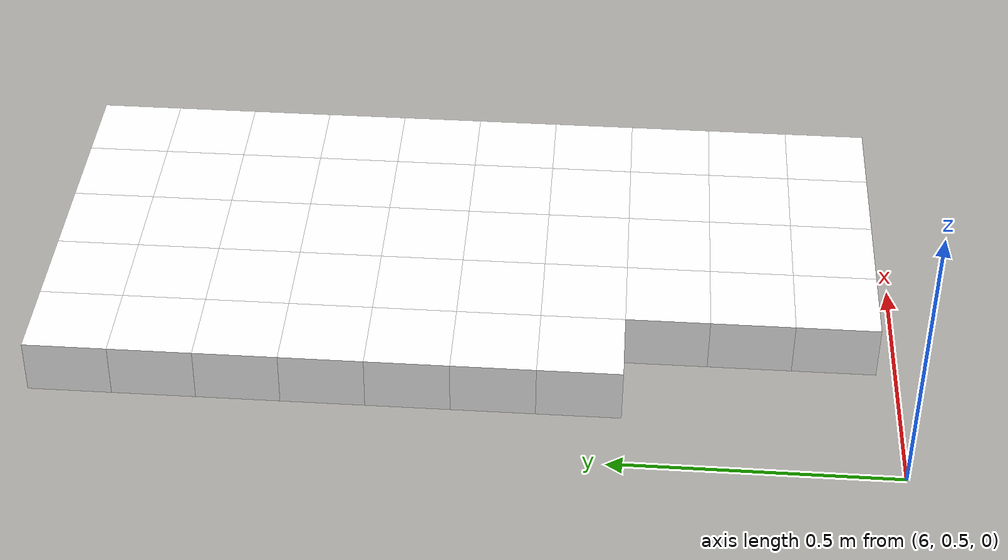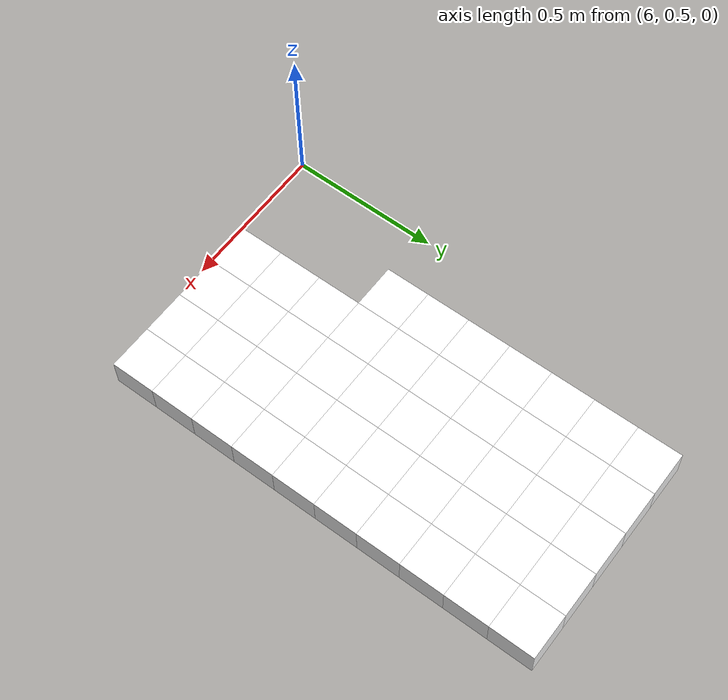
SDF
<sdf version="1.7">
 <world name="default">
  <include><uri>model://sun</uri></include>
  <model name="static_environment">
   <static>true</static>
   <link name="region_816">
    <pose>6.400000000000006 0.6 0.0 0.0 0.0 0.0</pose>
    <collision name="region_816_collision">
     <geometry><box><size>0.15 0.15 0.1</size></box></geometry>
     <surface><friction><ode><mu>1.0</mu><mu2>1.0</mu2></ode></friction></surface>
    </collision>
    <visual name="region_816_visual">
     <geometry><box><size>0.15 0.15 0.1</size></box></geometry>
     <material><ambient>1.0 1.0 1.0 1.0</ambient><diffuse>1.0 1.0 1.0 1.0</diffuse></material>
    </visual>
   </link>
   <link name="region_817">
    <pose>6.550000000000006 0.6 0.0 0.0 0.0 0.0</pose>
    <collision name="region_817_collision">
     <geometry><box><size>0.15 0.15 0.1</size></box></geometry>
     <surface><friction><ode><mu>1.0</mu><mu2>1.0</mu2></ode></friction></surface>
    </collision>
    <visual name="region_817_visual">
     <geometry><box><size>0.15 0.15 0.1</size></box></geometry>
     <material><ambient>1.0 1.0 1.0 1.0</ambient><diffuse>1.0 1.0 1.0 1.0</diffuse></material>
    </visual>
   </link>
   <link name="region_818">
    <pose>6.700000000000006 0.6 0.0 0.0 0.0 0.0</pose>
    <collision name="region_818_collision">
     <geometry><box><size>0.15 0.15 0.1</size></box></geometry>
     <surface><friction><ode><mu>1.0</mu><mu2>1.0</mu2></ode></friction></surface>
    </collision>
    <visual name="region_818_visual">
     <geometry><box><size>0.15 0.15 0.1</size></box></geometry>
     <material><ambient>1.0 1.0 1.0 1.0</ambient><diffuse>1.0 1.0 1.0 1.0</diffuse></material>
    </visual>
   </link>
   <link name="region_819">
    <pose>6.850000000000007 0.6 0.0 0.0 0.0 0.0</pose>
    <collision name="region_819_collision">
     <geometry><box><size>0.15 0.15 0.1</size></box></geometry>
     <surface><friction><ode><mu>1.0</mu><mu2>1.0</mu2></ode></friction></surface>
    </collision>
    <visual name="region_819_visual">
     <geometry><box><size>0.15 0.15 0.1</size></box></geometry>
     <material><ambient>1.0 1.0 1.0 1.0</ambient><diffuse>1.0 1.0 1.0 1.0</diffuse></material>
    </visual>
   </link>
   <link name="region_836">
    <pose>6.400000000000006 0.75 0.0 0.0 0.0 0.0</pose>
    <collision name="region_836_collision">
     <geometry><box><size>0.15 0.15 0.1</size></box></geometry>
     <surface><friction><ode><mu>1.0</mu><mu2>1.0</mu2></ode></friction></surface>
    </collision>
    <visual name="region_836_visual">
     <geometry><box><size>0.15 0.15 0.1</size></box></geometry>
     <material><ambient>1.0 1.0 1.0 1.0</ambient><diffuse>1.0 1.0 1.0 1.0</diffuse></material>
    </visual>
   </link>
   <link name="region_837">
    <pose>6.550000000000006 0.75 0.0 0.0 0.0 0.0</pose>
    <collision name="region_837_collision">
     <geometry><box><size>0.15 0.15 0.1</size></box></geometry>
     <surface><friction><ode><mu>1.0</mu><mu2>1.0</mu2></ode></friction></surface>
    </collision>
    <visual name="region_837_visual">
     <geometry><box><size>0.15 0.15 0.1</size></box></geometry>
     <material><ambient>1.0 1.0 1.0 1.0</ambient><diffuse>1.0 1.0 1.0 1.0</diffuse></material>
    </visual>
   </link>
   <link name="region_838">
    <pose>6.700000000000006 0.75 0.0 0.0 0.0 0.0</pose>
    <collision name="region_838_collision">
     <geometry><box><size>0.15 0.15 0.1</size></box></geometry>
     <surface><friction><ode><mu>1.0</mu><mu2>1.0</mu2></ode></friction></surface>
    </collision>
    <visual name="region_838_visual">
     <geometry><box><size>0.15 0.15 0.1</size></box></geometry>
     <material><ambient>1.0 1.0 1.0 1.0</ambient><diffuse>1.0 1.0 1.0 1.0</diffuse></material>
    </visual>
   </link>
   <link name="region_839">
    <pose>6.850000000000007 0.75 0.0 0.0 0.0 0.0</pose>
    <collision name="region_839_collision">
     <geometry><box><size>0.15 0.15 0.1</size></box></geometry>
     <surface><friction><ode><mu>1.0</mu><mu2>1.0</mu2></ode></friction></surface>
    </collision>
    <visual name="region_839_visual">
     <geometry><box><size>0.15 0.15 0.1</size></box></geometry>
     <material><ambient>1.0 1.0 1.0 1.0</ambient><diffuse>1.0 1.0 1.0 1.0</diffuse></material>
    </visual>
   </link>
   <link name="region_856">
    <pose>6.400000000000006 0.8999999999999999 0.0 0.0 0.0 0.0</pose>
    <collision name="region_856_collision">
     <geometry><box><size>0.15 0.15 0.1</size></box></geometry>
     <surface><friction><ode><mu>1.0</mu><mu2>1.0</mu2></ode></friction></surface>
    </collision>
    <visual name="region_856_visual">
     <geometry><box><size>0.15 0.15 0.1</size></box></geometry>
     <material><ambient>1.0 1.0 1.0 1.0</ambient><diffuse>1.0 1.0 1.0 1.0</diffuse></material>
    </visual>
   </link>
   <link name="region_857">
    <pose>6.550000000000006 0.8999999999999999 0.0 0.0 0.0 0.0</pose>
    <collision name="region_857_collision">
     <geometry><box><size>0.15 0.15 0.1</size></box></geometry>
     <surface><friction><ode><mu>1.0</mu><mu2>1.0</mu2></ode></friction></surface>
    </collision>
    <visual name="region_857_visual">
     <geometry><box><size>0.15 0.15 0.1</size></box></geometry>
     <material><ambient>1.0 1.0 1.0 1.0</ambient><diffuse>1.0 1.0 1.0 1.0</diffuse></material>
    </visual>
   </link>
   <link name="region_858">
    <pose>6.700000000000006 0.8999999999999999 0.0 0.0 0.0 0.0</pose>
    <collision name="region_858_collision">
     <geometry><box><size>0.15 0.15 0.1</size></box></geometry>
     <surface><friction><ode><mu>1.0</mu><mu2>1.0</mu2></ode></friction></surface>
    </collision>
    <visual name="region_858_visual">
     <geometry><box><size>0.15 0.15 0.1</size></box></geometry>
     <material><ambient>1.0 1.0 1.0 1.0</ambient><diffuse>1.0 1.0 1.0 1.0</diffuse></material>
    </visual>
   </link>
   <link name="region_859">
    <pose>6.850000000000007 0.8999999999999999 0.0 0.0 0.0 0.0</pose>
    <collision name="region_859_collision">
     <geometry><box><size>0.15 0.15 0.1</size></box></geometry>
     <surface><friction><ode><mu>1.0</mu><mu2>1.0</mu2></ode></friction></surface>
    </collision>
    <visual name="region_859_visual">
     <geometry><box><size>0.15 0.15 0.1</size></box></geometry>
     <material><ambient>1.0 1.0 1.0 1.0</ambient><diffuse>1.0 1.0 1.0 1.0</diffuse></material>
    </visual>
   </link>
   <link name="region_875">
    <pose>6.250000000000005 1.0499999999999998 0.0 0.0 0.0 0.0</pose>
    <collision name="region_875_collision">
     <geometry><box><size>0.15 0.15 0.1</size></box></geometry>
     <surface><friction><ode><mu>1.0</mu><mu2>1.0</mu2></ode></friction></surface>
    </collision>
    <visual name="region_875_visual">
     <geometry><box><size>0.15 0.15 0.1</size></box></geometry>
     <material><ambient>1.0 1.0 1.0 1.0</ambient><diffuse>1.0 1.0 1.0 1.0</diffuse></material>
    </visual>
   </link>
   <link name="region_876">
    <pose>6.400000000000006 1.0499999999999998 0.0 0.0 0.0 0.0</pose>
    <collision name="region_876_collision">
     <geometry><box><size>0.15 0.15 0.1</size></box></geometry>
     <surface><friction><ode><mu>1.0</mu><mu2>1.0</mu2></ode></friction></surface>
    </collision>
    <visual name="region_876_visual">
     <geometry><box><size>0.15 0.15 0.1</size></box></geometry>
     <material><ambient>1.0 1.0 1.0 1.0</ambient><diffuse>1.0 1.0 1.0 1.0</diffuse></material>
    </visual>
   </link>
   <link name="region_877">
    <pose>6.550000000000006 1.0499999999999998 0.0 0.0 0.0 0.0</pose>
    <collision name="region_877_collision">
     <geometry><box><size>0.15 0.15 0.1</size></box></geometry>
     <surface><friction><ode><mu>1.0</mu><mu2>1.0</mu2></ode></friction></surface>
    </collision>
    <visual name="region_877_visual">
     <geometry><box><size>0.15 0.15 0.1</size></box></geometry>
     <material><ambient>1.0 1.0 1.0 1.0</ambient><diffuse>1.0 1.0 1.0 1.0</diffuse></material>
    </visual>
   </link>
   <link name="region_878">
    <pose>6.700000000000006 1.0499999999999998 0.0 0.0 0.0 0.0</pose>
    <collision name="region_878_collision">
     <geometry><box><size>0.15 0.15 0.1</size></box></geometry>
     <surface><friction><ode><mu>1.0</mu><mu2>1.0</mu2></ode></friction></surface>
    </collision>
    <visual name="region_878_visual">
     <geometry><box><size>0.15 0.15 0.1</size></box></geometry>
     <material><ambient>1.0 1.0 1.0 1.0</ambient><diffuse>1.0 1.0 1.0 1.0</diffuse></material>
    </visual>
   </link>
   <link name="region_879">
    <pose>6.850000000000007 1.0499999999999998 0.0 0.0 0.0 0.0</pose>
    <collision name="region_879_collision">
     <geometry><box><size>0.15 0.15 0.1</size></box></geometry>
     <surface><friction><ode><mu>1.0</mu><mu2>1.0</mu2></ode></friction></surface>
    </collision>
    <visual name="region_879_visual">
     <geometry><box><size>0.15 0.15 0.1</size></box></geometry>
     <material><ambient>1.0 1.0 1.0 1.0</ambient><diffuse>1.0 1.0 1.0 1.0</diffuse></material>
    </visual>
   </link>
   <link name="region_895">
    <pose>6.250000000000005 1.2 0.0 0.0 0.0 0.0</pose>
    <collision name="region_895_collision">
     <geometry><box><size>0.15 0.15 0.1</size></box></geometry>
     <surface><friction><ode><mu>1.0</mu><mu2>1.0</mu2></ode></friction></surface>
    </collision>
    <visual name="region_895_visual">
     <geometry><box><size>0.15 0.15 0.1</size></box></geometry>
     <material><ambient>1.0 1.0 1.0 1.0</ambient><diffuse>1.0 1.0 1.0 1.0</diffuse></material>
    </visual>
   </link>
   <link name="region_896">
    <pose>6.400000000000006 1.2 0.0 0.0 0.0 0.0</pose>
    <collision name="region_896_collision">
     <geometry><box><size>0.15 0.15 0.1</size></box></geometry>
     <surface><friction><ode><mu>1.0</mu><mu2>1.0</mu2></ode></friction></surface>
    </collision>
    <visual name="region_896_visual">
     <geometry><box><size>0.15 0.15 0.1</size></box></geometry>
     <material><ambient>1.0 1.0 1.0 1.0</ambient><diffuse>1.0 1.0 1.0 1.0</diffuse></material>
    </visual>
   </link>
   <link name="region_897">
    <pose>6.550000000000006 1.2 0.0 0.0 0.0 0.0</pose>
    <collision name="region_897_collision">
     <geometry><box><size>0.15 0.15 0.1</size></box></geometry>
     <surface><friction><ode><mu>1.0</mu><mu2>1.0</mu2></ode></friction></surface>
    </collision>
    <visual name="region_897_visual">
     <geometry><box><size>0.15 0.15 0.1</size></box></geometry>
     <material><ambient>1.0 1.0 1.0 1.0</ambient><diffuse>1.0 1.0 1.0 1.0</diffuse></material>
    </visual>
   </link>
   <link name="region_898">
    <pose>6.700000000000006 1.2 0.0 0.0 0.0 0.0</pose>
    <collision name="region_898_collision">
     <geometry><box><size>0.15 0.15 0.1</size></box></geometry>
     <surface><friction><ode><mu>1.0</mu><mu2>1.0</mu2></ode></friction></surface>
    </collision>
    <visual name="region_898_visual">
     <geometry><box><size>0.15 0.15 0.1</size></box></geometry>
     <material><ambient>1.0 1.0 1.0 1.0</ambient><diffuse>1.0 1.0 1.0 1.0</diffuse></material>
    </visual>
   </link>
   <link name="region_899">
    <pose>6.850000000000007 1.2 0.0 0.0 0.0 0.0</pose>
    <collision name="region_899_collision">
     <geometry><box><size>0.15 0.15 0.1</size></box></geometry>
     <surface><friction><ode><mu>1.0</mu><mu2>1.0</mu2></ode></friction></surface>
    </collision>
    <visual name="region_899_visual">
     <geometry><box><size>0.15 0.15 0.1</size></box></geometry>
     <material><ambient>1.0 1.0 1.0 1.0</ambient><diffuse>1.0 1.0 1.0 1.0</diffuse></material>
    </visual>
   </link>
   <link name="region_915">
    <pose>6.250000000000005 1.35 0.0 0.0 0.0 0.0</pose>
    <collision name="region_915_collision">
     <geometry><box><size>0.15 0.15 0.1</size></box></geometry>
     <surface><friction><ode><mu>1.0</mu><mu2>1.0</mu2></ode></friction></surface>
    </collision>
    <visual name="region_915_visual">
     <geometry><box><size>0.15 0.15 0.1</size></box></geometry>
     <material><ambient>1.0 1.0 1.0 1.0</ambient><diffuse>1.0 1.0 1.0 1.0</diffuse></material>
    </visual>
   </link>
   <link name="region_916">
    <pose>6.400000000000006 1.35 0.0 0.0 0.0 0.0</pose>
    <collision name="region_916_collision">
     <geometry><box><size>0.15 0.15 0.1</size></box></geometry>
     <surface><friction><ode><mu>1.0</mu><mu2>1.0</mu2></ode></friction></surface>
    </collision>
    <visual name="region_916_visual">
     <geometry><box><size>0.15 0.15 0.1</size></box></geometry>
     <material><ambient>1.0 1.0 1.0 1.0</ambient><diffuse>1.0 1.0 1.0 1.0</diffuse></material>
    </visual>
   </link>
   <link name="region_917">
    <pose>6.550000000000006 1.35 0.0 0.0 0.0 0.0</pose>
    <collision name="region_917_collision">
     <geometry><box><size>0.15 0.15 0.1</size></box></geometry>
     <surface><friction><ode><mu>1.0</mu><mu2>1.0</mu2></ode></friction></surface>
    </collision>
    <visual name="region_917_visual">
     <geometry><box><size>0.15 0.15 0.1</size></box></geometry>
     <material><ambient>1.0 1.0 1.0 1.0</ambient><diffuse>1.0 1.0 1.0 1.0</diffuse></material>
    </visual>
   </link>
   <link name="region_918">
    <pose>6.700000000000006 1.35 0.0 0.0 0.0 0.0</pose>
    <collision name="region_918_collision">
     <geometry><box><size>0.15 0.15 0.1</size></box></geometry>
     <surface><friction><ode><mu>1.0</mu><mu2>1.0</mu2></ode></friction></surface>
    </collision>
    <visual name="region_918_visual">
     <geometry><box><size>0.15 0.15 0.1</size></box></geometry>
     <material><ambient>1.0 1.0 1.0 1.0</ambient><diffuse>1.0 1.0 1.0 1.0</diffuse></material>
    </visual>
   </link>
   <link name="region_919">
    <pose>6.850000000000007 1.35 0.0 0.0 0.0 0.0</pose>
    <collision name="region_919_collision">
     <geometry><box><size>0.15 0.15 0.1</size></box></geometry>
     <surface><friction><ode><mu>1.0</mu><mu2>1.0</mu2></ode></friction></surface>
    </collision>
    <visual name="region_919_visual">
     <geometry><box><size>0.15 0.15 0.1</size></box></geometry>
     <material><ambient>1.0 1.0 1.0 1.0</ambient><diffuse>1.0 1.0 1.0 1.0</diffuse></material>
    </visual>
   </link>
   <link name="region_935">
    <pose>6.250000000000005 1.5 0.0 0.0 0.0 0.0</pose>
    <collision name="region_935_collision">
     <geometry><box><size>0.15 0.15 0.1</size></box></geometry>
     <surface><friction><ode><mu>1.0</mu><mu2>1.0</mu2></ode></friction></surface>
    </collision>
    <visual name="region_935_visual">
     <geometry><box><size>0.15 0.15 0.1</size></box></geometry>
     <material><ambient>1.0 1.0 1.0 1.0</ambient><diffuse>1.0 1.0 1.0 1.0</diffuse></material>
    </visual>
   </link>
   <link name="region_936">
    <pose>6.400000000000006 1.5 0.0 0.0 0.0 0.0</pose>
    <collision name="region_936_collision">
     <geometry><box><size>0.15 0.15 0.1</size></box></geometry>
     <surface><friction><ode><mu>1.0</mu><mu2>1.0</mu2></ode></friction></surface>
    </collision>
    <visual name="region_936_visual">
     <geometry><box><size>0.15 0.15 0.1</size></box></geometry>
     <material><ambient>1.0 1.0 1.0 1.0</ambient><diffuse>1.0 1.0 1.0 1.0</diffuse></material>
    </visual>
   </link>
   <link name="region_937">
    <pose>6.550000000000006 1.5 0.0 0.0 0.0 0.0</pose>
    <collision name="region_937_collision">
     <geometry><box><size>0.15 0.15 0.1</size></box></geometry>
     <surface><friction><ode><mu>1.0</mu><mu2>1.0</mu2></ode></friction></surface>
    </collision>
    <visual name="region_937_visual">
     <geometry><box><size>0.15 0.15 0.1</size></box></geometry>
     <material><ambient>1.0 1.0 1.0 1.0</ambient><diffuse>1.0 1.0 1.0 1.0</diffuse></material>
    </visual>
   </link>
   <link name="region_938">
    <pose>6.700000000000006 1.5 0.0 0.0 0.0 0.0</pose>
    <collision name="region_938_collision">
     <geometry><box><size>0.15 0.15 0.1</size></box></geometry>
     <surface><friction><ode><mu>1.0</mu><mu2>1.0</mu2></ode></friction></surface>
    </collision>
    <visual name="region_938_visual">
     <geometry><box><size>0.15 0.15 0.1</size></box></geometry>
     <material><ambient>1.0 1.0 1.0 1.0</ambient><diffuse>1.0 1.0 1.0 1.0</diffuse></material>
    </visual>
   </link>
   <link name="region_939">
    <pose>6.850000000000007 1.5 0.0 0.0 0.0 0.0</pose>
    <collision name="region_939_collision">
     <geometry><box><size>0.15 0.15 0.1</size></box></geometry>
     <surface><friction><ode><mu>1.0</mu><mu2>1.0</mu2></ode></friction></surface>
    </collision>
    <visual name="region_939_visual">
     <geometry><box><size>0.15 0.15 0.1</size></box></geometry>
     <material><ambient>1.0 1.0 1.0 1.0</ambient><diffuse>1.0 1.0 1.0 1.0</diffuse></material>
    </visual>
   </link>
   <link name="region_955">
    <pose>6.250000000000005 1.65 0.0 0.0 0.0 0.0</pose>
    <collision name="region_955_collision">
     <geometry><box><size>0.15 0.15 0.1</size></box></geometry>
     <surface><friction><ode><mu>1.0</mu><mu2>1.0</mu2></ode></friction></surface>
    </collision>
    <visual name="region_955_visual">
     <geometry><box><size>0.15 0.15 0.1</size></box></geometry>
     <material><ambient>1.0 1.0 1.0 1.0</ambient><diffuse>1.0 1.0 1.0 1.0</diffuse></material>
    </visual>
   </link>
   <link name="region_956">
    <pose>6.400000000000006 1.65 0.0 0.0 0.0 0.0</pose>
    <collision name="region_956_collision">
     <geometry><box><size>0.15 0.15 0.1</size></box></geometry>
     <surface><friction><ode><mu>1.0</mu><mu2>1.0</mu2></ode></friction></surface>
    </collision>
    <visual name="region_956_visual">
     <geometry><box><size>0.15 0.15 0.1</size></box></geometry>
     <material><ambient>1.0 1.0 1.0 1.0</ambient><diffuse>1.0 1.0 1.0 1.0</diffuse></material>
    </visual>
   </link>
   <link name="region_957">
    <pose>6.550000000000006 1.65 0.0 0.0 0.0 0.0</pose>
    <collision name="region_957_collision">
     <geometry><box><size>0.15 0.15 0.1</size></box></geometry>
     <surface><friction><ode><mu>1.0</mu><mu2>1.0</mu2></ode></friction></surface>
    </collision>
    <visual name="region_957_visual">
     <geometry><box><size>0.15 0.15 0.1</size></box></geometry>
     <material><ambient>1.0 1.0 1.0 1.0</ambient><diffuse>1.0 1.0 1.0 1.0</diffuse></material>
    </visual>
   </link>
   <link name="region_958">
    <pose>6.700000000000006 1.65 0.0 0.0 0.0 0.0</pose>
    <collision name="region_958_collision">
     <geometry><box><size>0.15 0.15 0.1</size></box></geometry>
     <surface><friction><ode><mu>1.0</mu><mu2>1.0</mu2></ode></friction></surface>
    </collision>
    <visual name="region_958_visual">
     <geometry><box><size>0.15 0.15 0.1</size></box></geometry>
     <material><ambient>1.0 1.0 1.0 1.0</ambient><diffuse>1.0 1.0 1.0 1.0</diffuse></material>
    </visual>
   </link>
   <link name="region_959">
    <pose>6.850000000000007 1.65 0.0 0.0 0.0 0.0</pose>
    <collision name="region_959_collision">
     <geometry><box><size>0.15 0.15 0.1</size></box></geometry>
     <surface><friction><ode><mu>1.0</mu><mu2>1.0</mu2></ode></friction></surface>
    </collision>
    <visual name="region_959_visual">
     <geometry><box><size>0.15 0.15 0.1</size></box></geometry>
     <material><ambient>1.0 1.0 1.0 1.0</ambient><diffuse>1.0 1.0 1.0 1.0</diffuse></material>
    </visual>
   </link>
   <link name="region_975">
    <pose>6.250000000000005 1.7999999999999998 0.0 0.0 0.0 0.0</pose>
    <collision name="region_975_collision">
     <geometry><box><size>0.15 0.15 0.1</size></box></geometry>
     <surface><friction><ode><mu>1.0</mu><mu2>1.0</mu2></ode></friction></surface>
    </collision>
    <visual name="region_975_visual">
     <geometry><box><size>0.15 0.15 0.1</size></box></geometry>
     <material><ambient>1.0 1.0 1.0 1.0</ambient><diffuse>1.0 1.0 1.0 1.0</diffuse></material>
    </visual>
   </link>
   <link name="region_976">
    <pose>6.400000000000006 1.7999999999999998 0.0 0.0 0.0 0.0</pose>
    <collision name="region_976_collision">
     <geometry><box><size>0.15 0.15 0.1</size></box></geometry>
     <surface><friction><ode><mu>1.0</mu><mu2>1.0</mu2></ode></friction></surface>
    </collision>
    <visual name="region_976_visual">
     <geometry><box><size>0.15 0.15 0.1</size></box></geometry>
     <material><ambient>1.0 1.0 1.0 1.0</ambient><diffuse>1.0 1.0 1.0 1.0</diffuse></material>
    </visual>
   </link>
   <link name="region_977">
    <pose>6.550000000000006 1.7999999999999998 0.0 0.0 0.0 0.0</pose>
    <collision name="region_977_collision">
     <geometry><box><size>0.15 0.15 0.1</size></box></geometry>
     <surface><friction><ode><mu>1.0</mu><mu2>1.0</mu2></ode></friction></surface>
    </collision>
    <visual name="region_977_visual">
     <geometry><box><size>0.15 0.15 0.1</size></box></geometry>
     <material><ambient>1.0 1.0 1.0 1.0</ambient><diffuse>1.0 1.0 1.0 1.0</diffuse></material>
    </visual>
   </link>
   <link name="region_978">
    <pose>6.700000000000006 1.7999999999999998 0.0 0.0 0.0 0.0</pose>
    <collision name="region_978_collision">
     <geometry><box><size>0.15 0.15 0.1</size></box></geometry>
     <surface><friction><ode><mu>1.0</mu><mu2>1.0</mu2></ode></friction></surface>
    </collision>
    <visual name="region_978_visual">
     <geometry><box><size>0.15 0.15 0.1</size></box></geometry>
     <material><ambient>1.0 1.0 1.0 1.0</ambient><diffuse>1.0 1.0 1.0 1.0</diffuse></material>
    </visual>
   </link>
   <link name="region_979">
    <pose>6.850000000000007 1.7999999999999998 0.0 0.0 0.0 0.0</pose>
    <collision name="region_979_collision">
     <geometry><box><size>0.15 0.15 0.1</size></box></geometry>
     <surface><friction><ode><mu>1.0</mu><mu2>1.0</mu2></ode></friction></surface>
    </collision>
    <visual name="region_979_visual">
     <geometry><box><size>0.15 0.15 0.1</size></box></geometry>
     <material><ambient>1.0 1.0 1.0 1.0</ambient><diffuse>1.0 1.0 1.0 1.0</diffuse></material>
    </visual>
   </link>
   <link name="region_995">
    <pose>6.250000000000005 1.9499999999999997 0.0 0.0 0.0 0.0</pose>
    <collision name="region_995_collision">
     <geometry><box><size>0.15 0.15 0.1</size></box></geometry>
     <surface><friction><ode><mu>1.0</mu><mu2>1.0</mu2></ode></friction></surface>
    </collision>
    <visual name="region_995_visual">
     <geometry><box><size>0.15 0.15 0.1</size></box></geometry>
     <material><ambient>1.0 1.0 1.0 1.0</ambient><diffuse>1.0 1.0 1.0 1.0</diffuse></material>
    </visual>
   </link>
   <link name="region_996">
    <pose>6.400000000000006 1.9499999999999997 0.0 0.0 0.0 0.0</pose>
    <collision name="region_996_collision">
     <geometry><box><size>0.15 0.15 0.1</size></box></geometry>
     <surface><friction><ode><mu>1.0</mu><mu2>1.0</mu2></ode></friction></surface>
    </collision>
    <visual name="region_996_visual">
     <geometry><box><size>0.15 0.15 0.1</size></box></geometry>
     <material><ambient>1.0 1.0 1.0 1.0</ambient><diffuse>1.0 1.0 1.0 1.0</diffuse></material>
    </visual>
   </link>
   <link name="region_997">
    <pose>6.550000000000006 1.9499999999999997 0.0 0.0 0.0 0.0</pose>
    <collision name="region_997_collision">
     <geometry><box><size>0.15 0.15 0.1</size></box></geometry>
     <surface><friction><ode><mu>1.0</mu><mu2>1.0</mu2></ode></friction></surface>
    </collision>
    <visual name="region_997_visual">
     <geometry><box><size>0.15 0.15 0.1</size></box></geometry>
     <material><ambient>1.0 1.0 1.0 1.0</ambient><diffuse>1.0 1.0 1.0 1.0</diffuse></material>
    </visual>
   </link>
   <link name="region_998">
    <pose>6.700000000000006 1.9499999999999997 0.0 0.0 0.0 0.0</pose>
    <collision name="region_998_collision">
     <geometry><box><size>0.15 0.15 0.1</size></box></geometry>
     <surface><friction><ode><mu>1.0</mu><mu2>1.0</mu2></ode></friction></surface>
    </collision>
    <visual name="region_998_visual">
     <geometry><box><size>0.15 0.15 0.1</size></box></geometry>
     <material><ambient>1.0 1.0 1.0 1.0</ambient><diffuse>1.0 1.0 1.0 1.0</diffuse></material>
    </visual>
   </link>
   <link name="region_999">
    <pose>6.850000000000007 1.9499999999999997 0.0 0.0 0.0 0.0</pose>
    <collision name="region_999_collision">
     <geometry><box><size>0.15 0.15 0.1</size></box></geometry>
     <surface><friction><ode><mu>1.0</mu><mu2>1.0</mu2></ode></friction></surface>
    </collision>
    <visual name="region_999_visual">
     <geometry><box><size>0.15 0.15 0.1</size></box></geometry>
     <material><ambient>1.0 1.0 1.0 1.0</ambient><diffuse>1.0 1.0 1.0 1.0</diffuse></material>
    </visual>
   </link>
  </model>
 </world>
</sdf>
